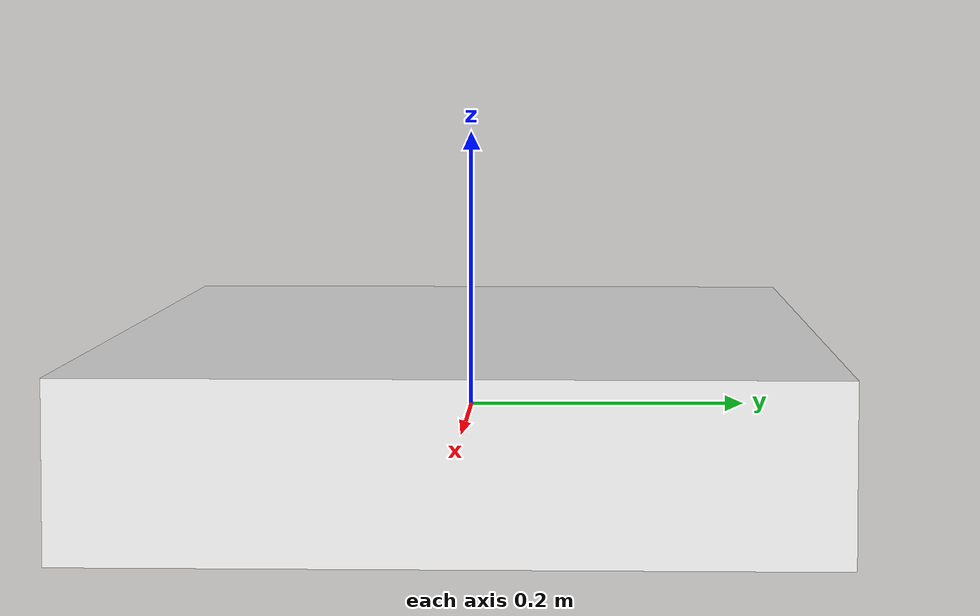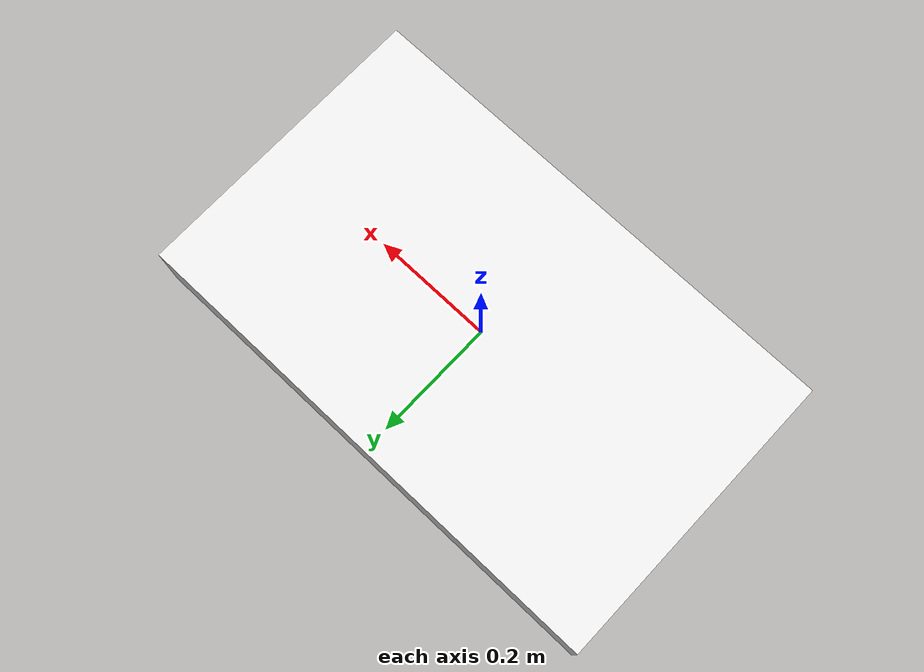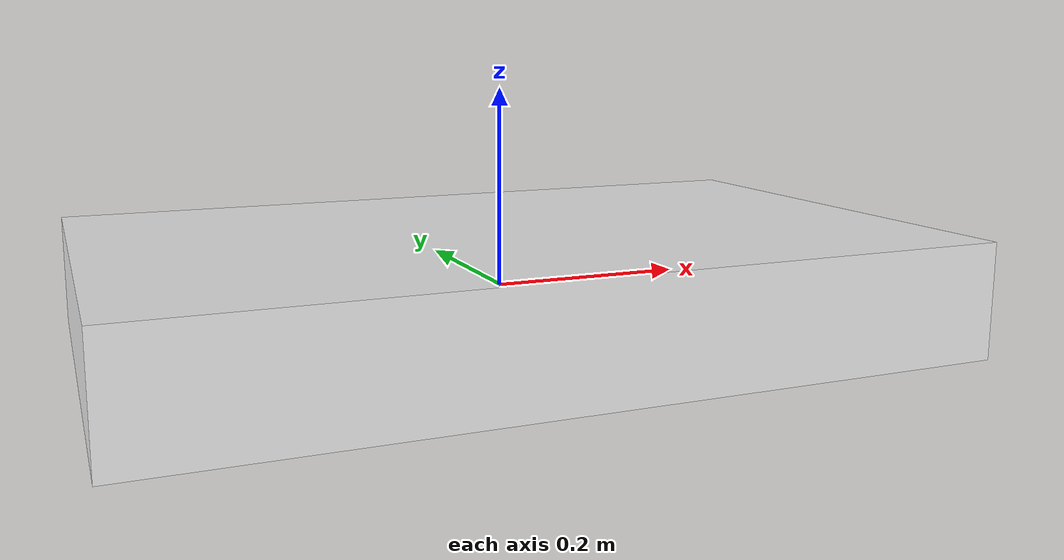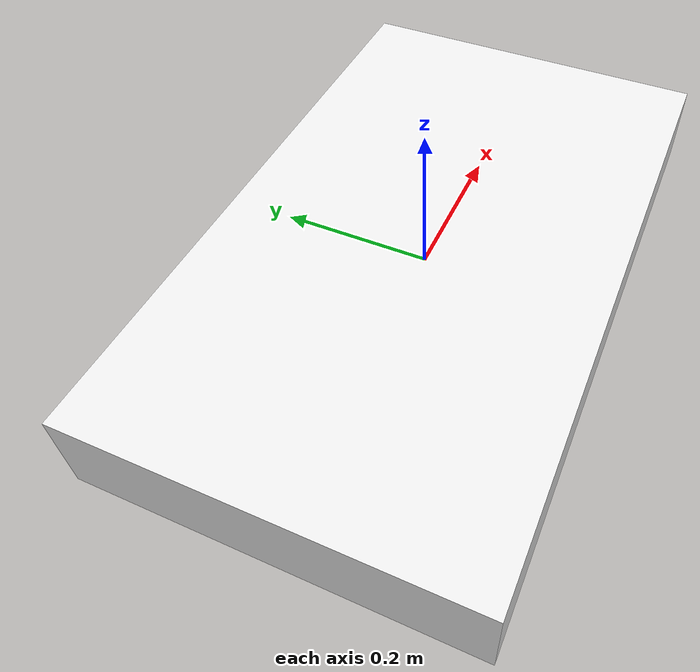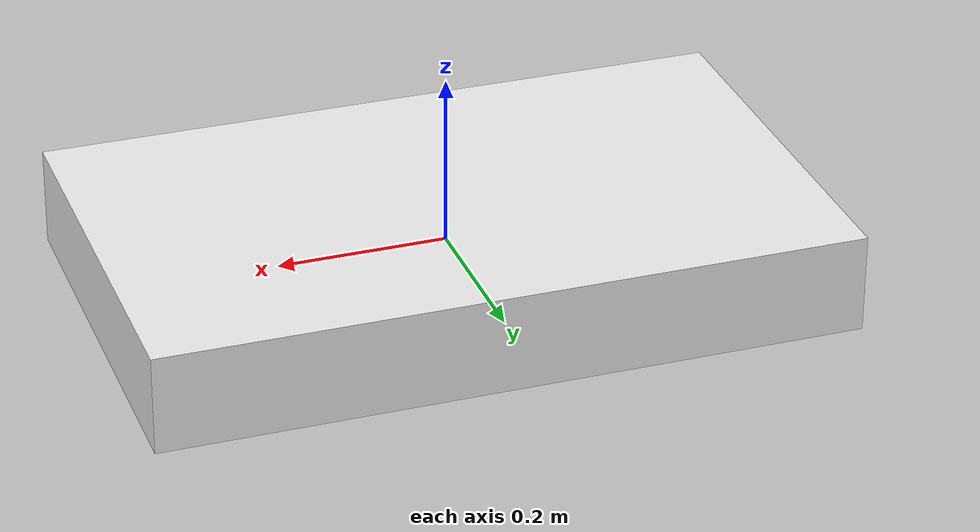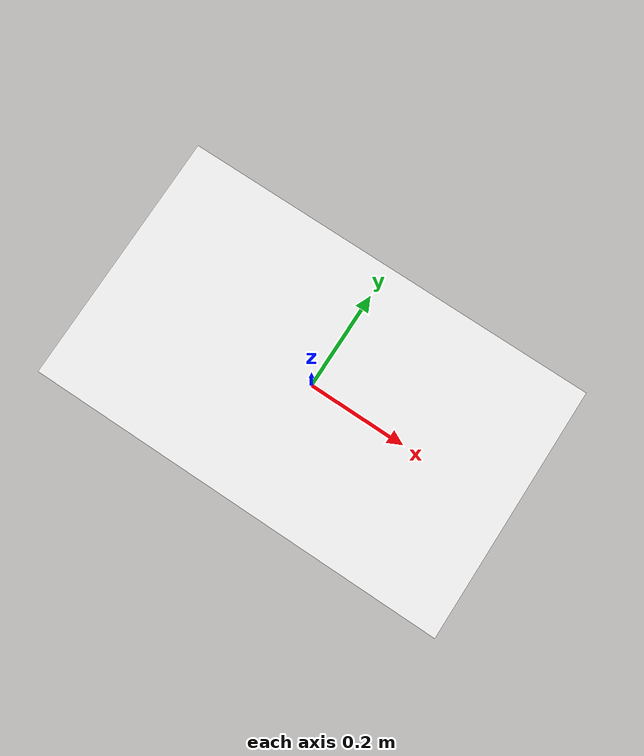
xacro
<?xml version="1.0"?>
<robot name="linorobot2" xmlns:xacro="http://www.ros.org/wiki/xacro">

  <xacro:arg name="namespace" default=""/>

  <xacro:include filename="$(find linorobot2_description)/urdf/mecanum_properties.urdf.xacro" />
  <xacro:include filename="$(find linorobot2_description)/urdf/mech/base.urdf.xacro" />
  <xacro:include filename="$(find linorobot2_description)/urdf/mech/mecanum_wheel_left_fixed.urdf.xacro" />

  <xacro:include filename="$(find linorobot2_description)/urdf/mech/end_channel.urdf.xacro" />
  <xacro:include filename="$(find linorobot2_description)/urdf/mech/side_channel.urdf.xacro" />
  <xacro:include filename="$(find linorobot2_description)/urdf/robots/camera.urdf.xacro" />

  <xacro:property name="rs_height" value="${base_height/2 + 0.05}" />

  <xacro:camera namespace="$(arg namespace)" camera_pos="front"
                x="0.410335" y="0" z="${rs_height}"
                r_rs= "-1.57" p_rs="0" yaw_rs="-1.57"
                r_cam="0" p_cam="0" yaw_cam="0"/>

  <xacro:camera namespace="$(arg namespace)" camera_pos="left"
                x="0.0" y="0.247" z="${rs_height}"
                r_rs="-1.57" p_rs="0.0" yaw_rs="0"
                r_cam="0" p_cam="0" yaw_cam="1.57"
  />

  <xacro:camera namespace="$(arg namespace)" camera_pos="rear"
                x="-0.41" y="0.0" z="${rs_height}"
                r_rs="-1.57" p_rs="0" yaw_rs="1.57"
                r_cam="0" p_cam="0" yaw_cam="3.14"
  />

  <xacro:camera namespace="$(arg namespace)" camera_pos="right"
                x="0" y="-0.247" z="${rs_height}"
                r_rs="-1.57" p_rs="0" yaw_rs="3.14"
                r_cam="0" p_cam="0" yaw_cam="-1.57"
  />

  <gazebo>
    <plugin name="mecanum_wheel_mimic" filename="libgazebo_ros_planar_move.so">
      <ros>
        <namespace>$(arg namespace)</namespace>
      </ros>
      <command_topic>cmd_vel</command_topic>
      <odometry_topic>odom</odometry_topic>
      <odometry_frame>$(arg namespace)_odom</odometry_frame>
      <odometry_rate>15.0</odometry_rate>
      <robot_base_frame>$(arg namespace)_base_link</robot_base_frame>
      <publish_odom>true</publish_odom>
      <publish_odom_tf>true</publish_odom_tf>
      <update_rate>100</update_rate>
      <publish_rate>10</publish_rate>
    </plugin>
  </gazebo>

  <xacro:base
    namespace="$(arg namespace)"
    length="${base_length}"
    width="${base_width}"
    height="${base_height}"
  />

</robot>

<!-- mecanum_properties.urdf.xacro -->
<robot xmlns:xacro="http://ros.org/wiki/xacro">
  <xacro:property name="base_length" value="0.82" />
  <xacro:property name="base_width" value="0.495" />
  <xacro:property name="base_height" value="0.116" />
  <xacro:property name="base_mass" value="30" />

  <xacro:property name="wheel_radius" value="0.07162" />
  <xacro:property name="wheel_width" value="0.05" />
  <xacro:property name="wheel_pos_x" value="0.25857" />
  <xacro:property name="wheel_pos_y" value="0.19355" />
  <xacro:property name="wheel_pos_z" value="0.0019" />
  <xacro:property name="wheel_mass" value="2.0" />
  <xacro:property name="wheel_torque" value="20" />

  <xacro:property name="laser_pose">
    <origin xyz="-0.0475 0 0.125" rpy="0 0 0"/>
  </xacro:property>

  <xacro:property name="depth_sensor_pose">
    <origin xyz="0.2375 0 0.06" rpy="0 0 0"/>
  </xacro:property>
</robot>

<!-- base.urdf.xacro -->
<robot xmlns:xacro="http://ros.org/wiki/xacro">
  <xacro:macro name="base" params="namespace length width height">

    <!-- Beware changing masses or inertias of the base link. It will affect the robot's motion. -->
    <!-- Gazebos planar move model moves the robot at a different velocity than requested, but publishes the requested velocity in odometry. -->
    <!-- A linear transformation between desired and actual velocity is applied to the velocity going into Gazebo planar movement, and to the odom coming out of Gazebo planar movement -->
    <!-- This linear transformation will change in the physics of the robot changes, so beware changing masses or inertias of the base link. -->

    <link name="${namespace}_base_link">
      <visual>
        <origin xyz="0 0 0" rpy="0 0 0"/>
        <geometry>
          <box size="${length} ${width} ${height}"/>
        </geometry>
      </visual>

      <collision>
        <origin xyz="0 0 0" rpy="0 0 0"/>
        <geometry>
          <box size="${length} ${width} ${height}"/>
        </geometry>

      </collision>

      <inertial>
        <origin xyz="0 0 0" rpy="0 0 0"/>
        <mass value="20"/> <!-- Small, non-zero mass -->
        <inertia
          ixx="1.14"
          ixy="-4.74983711945811E-18"
          ixz="-1.80635263223563E-18"
          iyy="1.53"
          iyz="6.42624983676543E-18"
          izz="0.43" />
      </inertial>
    </link>

  <gazebo reference="${namespace}_base_link">
    <material>Gazebo/White</material>
    <turnGravityOff>false</turnGravityOff>
    <selfCollide>true</selfCollide>
    <mu1>0.2</mu1>
    <mu2>0.2</mu2>
  </gazebo>

  <link name="${namespace}_attachment_point">

      <inertial>
        <origin xyz="0 0 0" rpy="0 0 0"/>
        <mass value="0.01"/> <!-- Small, non-zero mass -->
        <inertia
          ixx="0.0001"
          ixy="0"
          ixz="0"
          iyy="0.0001"
          iyz="0"
          izz="0.0001" />
      </inertial>
    </link>

  <gazebo reference="${namespace}_attachment_point">
    <material>Gazebo/Gray</material>
    <turnGravityOff>false</turnGravityOff>
    <selfCollide>true</selfCollide>
  </gazebo>

  <joint name="${namespace}_attachment_to_base" type="fixed">
    <parent link="${namespace}_base_link"/>
    <child link="${namespace}_attachment_point"/>
    <origin xyz="0 0 0.6" rpy="0 0 1.57"/>
  </joint>

  <gazebo reference='${namespace}_attachment_to_base'>
    <preserveFixedJoint>true</preserveFixedJoint>
  </gazebo>

  </xacro:macro>
</robot>

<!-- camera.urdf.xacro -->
<robot name="linorobot2_mecanum" xmlns:xacro="http://ros.org/wiki/xacro">

  <xacro:macro name="camera" params="namespace camera_pos x y z r_rs p_rs yaw_rs r_cam p_cam yaw_cam">

    <xacro:property name="rs_pcl_topic" value="/${namespace}/${camera_pos}_rs/${camera_pos}_rs/depth/color/points" />

    <gazebo reference="${namespace}_${camera_pos}_gazebo_camera_frame">
    <sensor type="depth" name="${camera_pos}_rs">
      <update_rate>15.0</update_rate> <!-- Gazebo does not necessarily respect this update rate when publishing the camera data to ros2 -->

      <camera>
        <horizontal_fov>1.517</horizontal_fov>
        <image>
          <width>100</width>
          <height>56</height>
          <format>R8G8B8</format>
        </image>
        <clip>
          <near>0.05</near>
          <far>5</far> <!--  Be sure to set this greater than the max value of the cropbox distance cutoff, the camera generates a grey plane at this distance that will be interpreted as an obstacle-->
        </clip>
        <noise>
          <type>gaussian</type>
          <mean>0.0</mean>
          <stddev>0.007</stddev>
        </noise>
      </camera>

      <plugin name="${camera_pos}_camera_controller" filename="libgazebo_ros_camera.so">
        <ros>
            <namespace>${namespace}</namespace>
            <remapping>/${namespace}/${camera_pos}_rs/points:=${rs_pcl_topic}</remapping>
        </ros>

        <alwaysOn>true</alwaysOn>
        <updateRate>0.0</updateRate>
        <cameraName>${namespace}_${camera_pos}_camera</cameraName>
        <pointsTopicName>points</pointsTopicName>
        <imageTopicName>image_raw</imageTopicName>
        <cameraInfoTopicName>camera_info</cameraInfoTopicName>
        <frameName>/${namespace}_${camera_pos}_rs_gazebo_camera_frame</frameName>
        <hackBaseline>0.07</hackBaseline>
        <distortionK1>0.0</distortionK1>
        <distortionK2>0.0</distortionK2>
        <distortionK3>0.0</distortionK3>
        <distortionT1>0.0</distortionT1>
        <distortionT2>0.0</distortionT2>

      </plugin>
    </sensor>
  </gazebo>

    <link name="${namespace}_${camera_pos}_rs_depth_optical_frame">
    </link>

    <joint
      name="${namespace}_base_link_to_${camera_pos}_rs" type="fixed">
      <origin
        xyz="${x} ${y} ${z}"
        rpy="${r_rs} ${p_rs} ${yaw_rs}" />
      <parent link="${namespace}_base_link" />
      <child link="${namespace}_${camera_pos}_rs_depth_optical_frame" />
    </joint>

    <link name="${namespace}_${camera_pos}_gazebo_camera_frame">
    </link>

    <joint
      name="${namespace}_base_link_to_${camera_pos}_gazebo_camera_frame" type="fixed">
      <origin
        xyz="${x} ${y} ${z}"
        rpy="${r_cam} ${p_cam} ${yaw_cam}" />
      <parent link="${namespace}_base_link" />
      <child link="${namespace}_${camera_pos}_gazebo_camera_frame" />
    </joint>

  </xacro:macro>
</robot>
